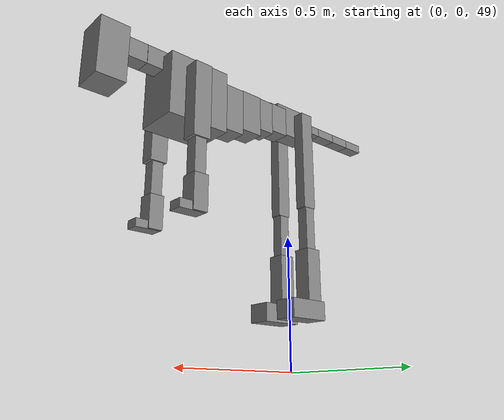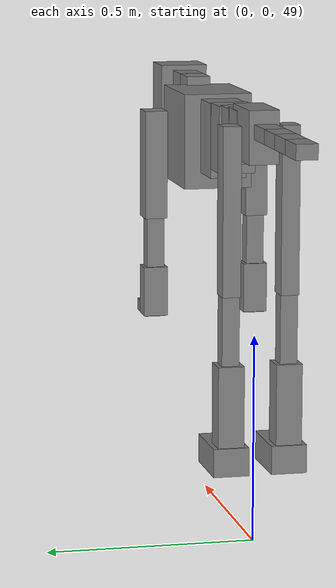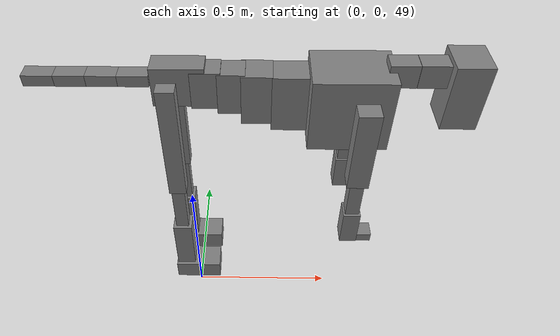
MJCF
<mujoco model="dog">

    <default>
        <joint armature="0.02" stiffness="1" damping="0.2" limited="true"/>
        <geom condim="3" friction="1 0.05 0.05" margin="0.01"/>
        <motor ctrllimited="true" ctrlrange="-1.0 1.0" forcelimited="true" gear="50"/>
    </default>

    <compiler inertiafromgeom="true" angle="radian"/>

    <option timestep="0.016" iterations="50" tolerance="1e-10" solver="Newton" jacobian="dense" cone="pyramidal"/>

    <size nconmax="20000" njmax="60000" nstack="5000000"/>
    <visual>
        <map force="0.1" zfar="30"/>
        <rgba haze="0.15 0.25 0.35 1"/>
        <quality shadowsize="2048"/>
        <global offwidth="800" offheight="800"/>
    </visual>

    <asset>
        <texture type="skybox" builtin="gradient" rgb1="0.3 0.5 0.7" rgb2="0 0 0" width="512" height="512"/>
        <texture name="texplane" type="2d" builtin="checker" rgb1=".2 .3 .4" rgb2=".1 0.15 0.2" width="512" height="512"
                 mark="cross" markrgb=".8 .8 .8"/>
        <texture name="texgeom" type="cube" builtin="flat" mark="cross" width="127" height="1278" rgb1="0.8 0.6 0.4"
                 rgb2="0.8 0.6 0.4" markrgb="1 1 1" random="0.01"/>

        <material name="matplane" reflectance="0.3" texture="texplane" texrepeat="1 1" texuniform="true"/>
        <material name="matgeom" texture="texgeom" texuniform="true" rgba="0.8 0.6 .4 1"/>
    </asset>

    <worldbody>
        <geom name="floor" pos="0 0 0" size="0 0 .25" type="plane" material="matplane" condim="3"/>

        <light directional="false" diffuse=".2 .2 .2" specular="0 0 0" pos="0 0 5" dir="0 0 -1" castshadow="false"/>
        <light mode="targetbodycom" target="torso" directional="false" diffuse=".8 .8 .8" specular="0.3 0.3 0.3"
               pos="0 0 4.0" dir="0 0 -1"/>

        <body name="root" pos="0 0 50">
            <freejoint name="root_1"/>
            <geom type="box" pos="0 0 -0.02" size="0.0774  0.0358  0.063" density="2030"/>

            <body name="spine1" pos="0.054 0 0">
                <joint name="spine1_y" axis="0 1 0" range="0 0.7" limited="true"/>
                <geom type="box" pos="0.02375 0 -0.03" size="0.04375  0.0375  0.05985" density="2030"/>

                <body name="spine2" pos="0.0612 0 0">
                    <joint name="spine2_y" axis="0 1 0" range="-0.15 0.15" limited="true"/>
                    <geom type="box" pos="0.03555  0  -0.04" size="0.04055  0.039  0.06615" density="2030"/>

                    <body name="spine3" pos="0.0730 0 0">
                        <joint name="spine3_y" axis="0 1 0" range="-0.15 0.15" limited="true"/>
                        <geom type="box" pos="0.03555  0  -0.057" size="0.04555  0.0445  0.081" density="2030"/>

                        <body name="spine4" pos="0.0780 0 0">
                            <joint name="spine4_y" axis="0 1 0" range="-0.15 0.15" limited="true"/>
                            <geom type="box" pos="0.05265  0  -0.07" size="0.05265  0.045  0.09135" density="2030"/>

                            <body name="torso" pos="0.1082 0 0">
                                <joint name="torso_y" axis="0 1 0" range="-0.15 0.15" limited="true"/>
                                <geom type="box" pos="0.11925  0  -0.085" size="0.11925  0.085  0.11745"
                                      density="2030"/>

                                <body name="neck1" pos="0.2160  0   0.0180">
                                    <joint name="neck1_y" axis="0 1 0" range="-1.2  -1" limited="true"/>
                                    <geom type="box" pos="0.0423  0  0" size="0.0423  0.03  0.036" density="2325"/>

                                    <body name="neck2" pos="0.0853  0  0">
                                        <joint name="neck2_y" axis="0 1 0" range="0.1  0" limited="true"/>
                                        <geom type="box" pos="0.0423  0  0" size="0.0423  0.03  0.036" density="2325"/>

                                        <body name="head" pos="0.0853  0  0">
                                            <joint name="head_y" axis="0 1 0" range="-0.3  -0.2" limited="true"/>
                                            <geom type="box" pos="0.0531  0  -0.055" size="0.0531  0.06  0.1044"
                                                  density="4030"/>

                                        </body>
                                    </body>
                                </body>

                                <body name="front_shoulder" pos="0.156  0   -0.0480">
                                    <joint name="front_shoulder_y" axis="0 1 0" range="-1 1.5" limited="true"/>
                                    <geom type="box" pos="0 0.13 -0.1096" size="0.0330  0.0282  0.1362" density="1158"/>
                                    <geom type="box" pos="0 -0.13 -0.1096" size="0.0330  0.0282  0.1362"
                                          density="1158"/>

                                    <body name="front_elbow" pos="0  0  -0.2191">
                                        <joint name="front_elbow_y" axis="0 1 0" range="-2 0" limited="true"/>
                                        <geom type="box" pos="0 0.13 -0.0830" size="0.0218  0.0223  0.0830"
                                              density="1081"/>
                                        <geom type="box" pos="0 -0.13 -0.0830" size="0.0218  0.0223  0.0830"
                                              density="1081"/>

                                        <body name="front_wrist" pos="0  0  -0.1659">
                                            <joint name="front_wrist_y" axis="0 1 0" range="-0.2 0" limited="true"/>
                                            <geom type="box" pos="0 0.13 -0.0494" size="0.0273  0.0303  0.0626"
                                                  density="1664"/>
                                            <geom type="box" pos="0 -0.13 -0.0494" size="0.0273  0.0303  0.0626"
                                                  density="1664"/>

                                            <body name="front_finger_end" pos="0  0  -0.0989">
                                                <joint name="front_finger_y" axis="0 1 0" range="-0.4 1"
                                                       limited="true"/>
                                                <geom type="box" pos="0.0263  0.13  -0.0002"
                                                      size="0.0483  0.0263  0.0152" density="1515"/>
                                                <geom type="box" pos="0.0263  -0.13  -0.0002"
                                                      size="0.0483  0.0263  0.0152" density="1515"/>

                                            </body>

                                        </body>
                                    </body>
                                </body>

                            </body>
                        </body>
                    </body>
                </body>
            </body>

            <body name="back_hip" pos="-0.03 0 -0.018">
                <joint name="back_hip_y" axis="0 1 0" range="-1.5 0.3" limited="true"/>
                <geom type="box" pos="0 0.07 -0.1768" size="0.0277  0.0217  0.1996" density="1154"/>
                <geom type="box" pos="0 -0.07 -0.1768" size="0.0277  0.0217  0.1996" density="1154"/>

                <body name="back_knee" pos="0  0  -0.3535">
                    <joint name="back_knee_y" axis="0 1 0" range="0 2.8" limited="true"/>
                    <geom type="box" pos="0 0.07 -0.0995" size="0.0211  0.0208  0.1150" density="1227"/>
                    <geom type="box" pos="0 -0.07 -0.0995" size="0.0211  0.0208  0.1150" density="1227"/>

                    <body name="back_ankle" pos="0  0  -0.1989">
                        <joint name="back_ankle_y" axis="0 1 0" range="-2.2 0" limited="true"/>
                        <geom type="box" pos="0 0.07 -0.0990" size="0.0314  0.0314  0.1103" density="1284"/>
                        <geom type="box" pos="0 -0.07 -0.0990" size="0.0314  0.0314  0.1103" density="1284"/>

                        <body name="back_toe_end" pos="0  0  -0.1981">
                            <joint name="back_toe_y" axis="0 1 0" range="-0.4 1" limited="true"/>
                            <geom type="box" pos="0.0428  0.07  -0.0192" size="0.0785  0.0428  0.0342" density="1515"/>
                            <geom type="box" pos="0.0428  -0.07  -0.0192" size="0.0785  0.0428  0.0342" density="1515"/>

                        </body>
                    </body>
                </body>
            </body>

            <body name="tail1" pos="-0.074 0 -0.006">
                <joint name="tail1_y" axis="0 1 0" range="-0.2 0.2" limited="true"/>
                <geom type="box" pos="-0.0536  0  0" size="0.045  0.025  0.0175" density="1587"/>

                <body name="tail2" pos="-0.09 0 0">
                    <joint name="tail2_y" axis="0 1 0" range="-0.2 0.2" limited="true"/>
                    <geom type="box" pos="-0.0536  0  0" size="0.045  0.025  0.0175" density="1587"/>

                    <body name="tail3" pos="-0.09 0 0">
                        <joint name="tail3_y" axis="0 1 0" range="-0.2 0.2" limited="true"/>
                        <geom type="box" pos="-0.0536  0  0" size="0.045  0.025  0.0175" density="1587"/>

                        <body name="tail4" pos="-0.09 0 0">
                            <joint name="tail4_y" axis="0 1 0" range="-0.2 0.2" limited="true"/>
                            <geom type="box" pos="-0.0536  0  0" size="0.045  0.025  0.0175" density="1587"/>

                        </body>
                    </body>
                </body>
            </body>
        </body>
    </worldbody>

    <actuator>
        <motor joint="spine1_y" forcerange="-150 150     "/>
        <motor joint="spine2_y" forcerange="-150 150     "/>
        <motor joint="spine3_y" forcerange="-150 150     "/>
        <motor joint="spine4_y" forcerange="-150 150     "/>
        <motor joint="torso_y" forcerange="-150 150     "/>
        <motor joint="neck1_y" forcerange="-100 100       "/>
        <motor joint="neck2_y" forcerange="-100 100       "/>
        <motor joint="head_y" forcerange="-150 150       "/>
        <motor joint="front_shoulder_y" forcerange="-131.83 156.33"/>
        <motor joint="front_elbow_y" forcerange="-106.98 155.25"/>
        <motor joint="front_wrist_y" forcerange="-135.13 107.34"/>
        <motor joint="front_finger_y" forcerange="-55.63 44.75"/>
        <motor joint="back_hip_y" forcerange="-278.80 210.70"/>
        <motor joint="back_knee_y" forcerange="-239.03 263.20"/>
        <motor joint="back_angle_y" forcerange="-196.45 206.69"/>
        <motor joint="back_toe_y" forcerange="-130.06 132.42"/>
        <motor joint="tail1_y" forcerange="-50 50     "/>
        <motor joint="tail2_y" forcerange="-50 50     "/>
        <motor joint="tail3_y" forcerange="-50 50     "/>
        <motor joint="tail4_y" forcerange="-50 50     "/>
    </actuator>
</mujoco>
